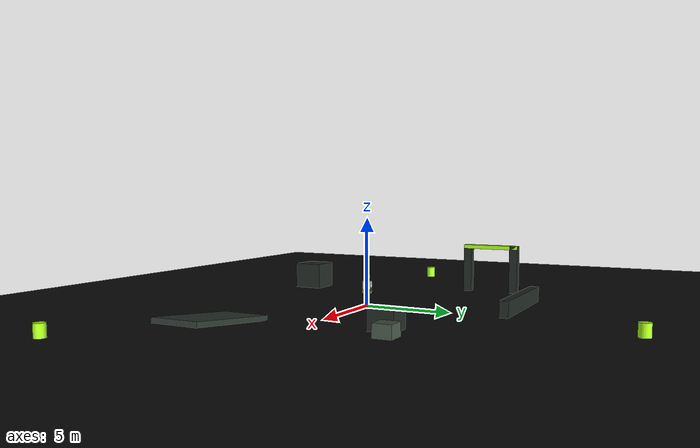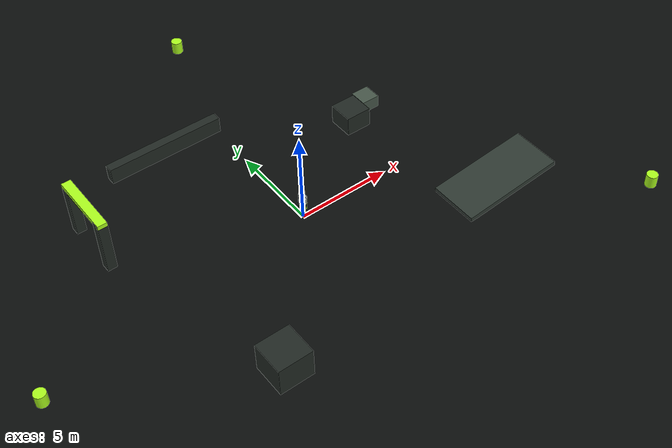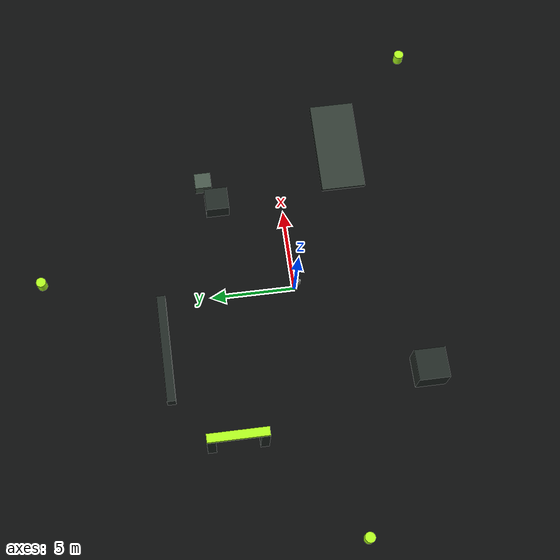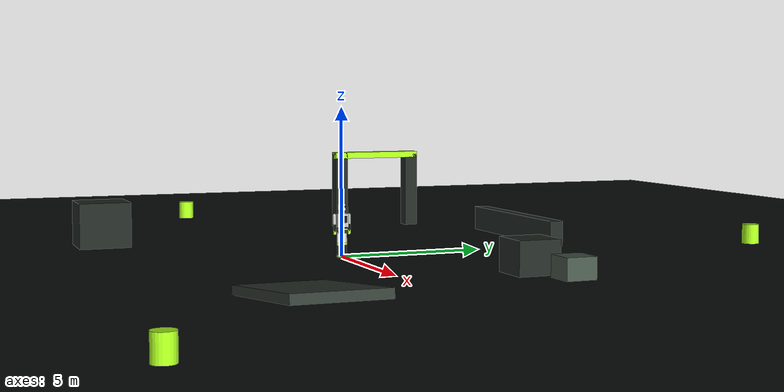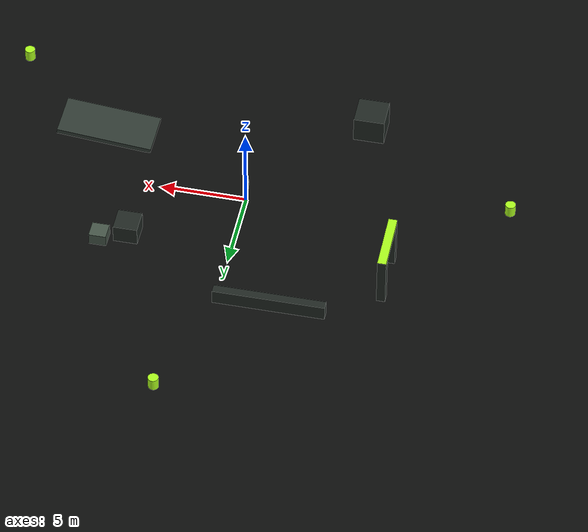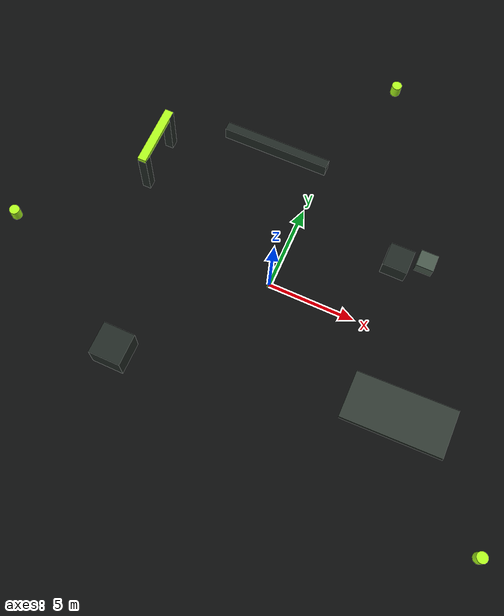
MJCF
<mujoco model="AION H1 open field trainer">
  <compiler angle="radian" autolimits="true"/>
  <option timestep="0.002" integrator="implicitfast" cone="elliptic" gravity="0 0 -9.81"/>
  <statistic center="0 0 1" extent="18"/>

  <default>
    <joint damping="1.5" armature="0.015" limited="true"/>
    <geom friction="1.0 0.005 0.0001" condim="4" contype="1" conaffinity="0" solref="0.012 1" solimp="0.92 0.98 0.002"/>
    <position kp="180" kv="18" ctrllimited="true" forcelimited="true"/>
    <default class="leg">
      <joint damping="2.2" armature="0.025"/>
      <geom rgba="0.76 0.79 0.75 1"/>
    </default>
    <default class="accent">
      <geom rgba="0.68 1 0.12 1"/>
    </default>
    <default class="dark">
      <geom rgba="0.075 0.09 0.085 1"/>
    </default>
    <default class="world">
      <geom contype="0" conaffinity="1" friction="1.05 0.005 0.0001" rgba="0.13 0.16 0.14 1"/>
    </default>
  </default>

  <worldbody>
    <geom name="field_floor" type="plane" size="60 60 0.1" rgba="0.045 0.05 0.047 1"
          contype="0" conaffinity="1" friction="1.05 0.005 0.0001"/>
    <light name="key" pos="2 -4 7" dir="0.2 0.3 -1" diffuse="1 1 1" castshadow="true"/>

    <geom name="crate_a" class="world" type="box" pos="6 4 0.55" size="0.7 0.7 0.55"/>
    <geom name="crate_b" class="world" type="box" pos="7.5 4.7 0.35" size="0.5 0.5 0.35" rgba="0.28 0.34 0.29 1"/>
    <geom name="crate_c" class="world" type="box" pos="-6 -7 0.8" size="0.9 0.9 0.8"/>
    <geom name="ramp" class="world" type="box" pos="9 -4 0.34" size="2.8 1.35 0.14" euler="0 -0.1 0" rgba="0.19 0.23 0.2 1"/>
    <geom name="low_wall" class="world" type="box" pos="-3 8 0.45" size="3.2 0.25 0.45"/>
    <geom name="gate_left" class="world" type="box" pos="-9 3 1.5" size="0.25 0.25 1.5"/>
    <geom name="gate_right" class="world" type="box" pos="-9 6 1.5" size="0.25 0.25 1.5"/>
    <geom name="gate_top" class="world" type="box" pos="-9 4.5 2.9" size="0.25 1.75 0.12" rgba="0.68 1 0.12 1"/>
    <geom name="beacon_north" class="world" type="cylinder" pos="2 15 0.35" size="0.3 0.35" rgba="0.68 1 0.12 1"/>
    <geom name="beacon_west" class="world" type="cylinder" pos="-15 -2 0.35" size="0.3 0.35" rgba="0.68 1 0.12 1"/>
    <geom name="beacon_east" class="world" type="cylinder" pos="15 -9 0.35" size="0.3 0.35" rgba="0.68 1 0.12 1"/>

    <body name="pelvis" pos="0 0 0.89">
      <joint name="root_x" type="slide" axis="1 0 0" limited="false" damping="0.1"/>
      <joint name="root_y" type="slide" axis="0 1 0" limited="false" damping="0.1"/>
      <joint name="root_z" type="slide" axis="0 0 1" range="-0.75 0.8" damping="0.1"/>
      <joint name="root_yaw" type="hinge" axis="0 0 1" limited="false" damping="0.4"/>
      <joint name="root_roll" type="hinge" axis="1 0 0" range="-1.2 1.2" damping="0.6"/>
      <joint name="root_pitch" type="hinge" axis="0 1 0" range="-1.45 1.45" damping="0.6"/>
      <geom name="pelvis_shell" type="box" size="0.13 0.16 0.095" mass="7.5" rgba="0.13 0.15 0.14 1"/>
      <geom name="pelvis_core" class="accent" type="box" size="0.07 0.168 0.028" pos="0.065 0 0.025" mass="0.5" contype="0" conaffinity="0"/>

      <body name="torso" pos="0 0 0.14">
        <geom name="torso_shell" type="box" size="0.145 0.195 0.23" pos="0 0 0.19" mass="13.5" rgba="0.70 0.73 0.70 1"/>
        <geom name="torso_panel" class="dark" type="box" size="0.151 0.13 0.11" pos="0.005 0 0.22" mass="0.5" contype="0" conaffinity="0"/>
        <geom name="torso_light" class="accent" type="box" size="0.156 0.055 0.012" pos="0.006 0 0.31" mass="0.05" contype="0" conaffinity="0"/>
        <site name="site_imu_torso" pos="0 0 0.34" size="0.018" rgba="0.68 1 0.12 1"/>

        <body name="head" pos="0 0 0.51">
          <geom name="neck" class="dark" type="cylinder" size="0.055 0.055" mass="0.5"/>
          <geom name="head_shell" type="box" size="0.115 0.105 0.105" pos="0 0 0.12" mass="2.6" rgba="0.76 0.79 0.75 1"/>
          <geom name="visor" class="dark" type="box" size="0.119 0.09 0.035" pos="0.008 0 0.14" mass="0.05" contype="0" conaffinity="0"/>
          <geom name="visor_signal" class="accent" type="box" size="0.121 0.045 0.008" pos="0.01 0 0.14" mass="0.02" contype="0" conaffinity="0"/>
        </body>

        <body name="left_upper_arm" pos="0 0.255 0.36">
          <joint name="left_shoulder_pitch" axis="0 1 0" range="-1.4 1.4"/>
          <geom name="left_upper_arm_geom" class="leg" type="capsule" fromto="0 0 0 0 0 -0.29" size="0.055" mass="1.7"/>
          <body name="left_forearm" pos="0 0 -0.29">
            <joint name="left_elbow_pitch" axis="0 1 0" range="0 2.2"/>
            <geom name="left_forearm_geom" class="dark" type="capsule" fromto="0 0 0 0 0 -0.25" size="0.048" mass="0.85"/>
            <geom name="left_hand" class="accent" type="box" size="0.045 0.04 0.07" pos="0 0 -0.28" mass="0.2"/>
          </body>
        </body>

        <body name="right_upper_arm" pos="0 -0.255 0.36">
          <joint name="right_shoulder_pitch" axis="0 1 0" range="-1.4 1.4"/>
          <geom name="right_upper_arm_geom" class="leg" type="capsule" fromto="0 0 0 0 0 -0.29" size="0.055" mass="1.7"/>
          <body name="right_forearm" pos="0 0 -0.29">
            <joint name="right_elbow_pitch" axis="0 1 0" range="0 2.2"/>
            <geom name="right_forearm_geom" class="dark" type="capsule" fromto="0 0 0 0 0 -0.25" size="0.048" mass="0.85"/>
            <geom name="right_hand" class="accent" type="box" size="0.045 0.04 0.07" pos="0 0 -0.28" mass="0.2"/>
          </body>
        </body>
      </body>

      <body name="left_thigh" pos="0 0.1 -0.09">
        <joint name="left_hip_roll" axis="1 0 0" range="-0.45 0.45"/>
        <joint name="left_hip_pitch" axis="0 1 0" range="-1.2 0.8"/>
        <geom name="left_thigh_geom" class="leg" type="capsule" fromto="0 0 0 0 0 -0.37" size="0.075" mass="4.8"/>
        <body name="left_shin" pos="0 0 -0.37">
          <joint name="left_knee_pitch" axis="0 1 0" range="0 2.1"/>
          <geom name="left_knee" class="accent" type="sphere" size="0.083" mass="0.4"/>
          <geom name="left_shin_geom" class="dark" type="capsule" fromto="0 0 -0.02 0 0 -0.36" size="0.062" mass="3.2"/>
          <body name="left_foot" pos="0 0 -0.36">
            <joint name="left_ankle_pitch" axis="0 1 0" range="-0.75 0.55"/>
            <joint name="left_ankle_roll" axis="1 0 0" range="-0.35 0.35"/>
            <geom name="left_foot_geom" type="box" size="0.145 0.068 0.038" pos="0.065 0 -0.045" mass="1.35" rgba="0.68 1 0.12 1" friction="1.2 0.006 0.0001"/>
            <site name="site_left_sole" type="box" size="0.13 0.06 0.018" pos="0.065 0 -0.079" rgba="0.68 1 0.12 0.14"/>
          </body>
        </body>
      </body>

      <body name="right_thigh" pos="0 -0.1 -0.09">
        <joint name="right_hip_roll" axis="1 0 0" range="-0.45 0.45"/>
        <joint name="right_hip_pitch" axis="0 1 0" range="-1.2 0.8"/>
        <geom name="right_thigh_geom" class="leg" type="capsule" fromto="0 0 0 0 0 -0.37" size="0.075" mass="4.8"/>
        <body name="right_shin" pos="0 0 -0.37">
          <joint name="right_knee_pitch" axis="0 1 0" range="0 2.1"/>
          <geom name="right_knee" class="accent" type="sphere" size="0.083" mass="0.4"/>
          <geom name="right_shin_geom" class="dark" type="capsule" fromto="0 0 -0.02 0 0 -0.36" size="0.062" mass="3.2"/>
          <body name="right_foot" pos="0 0 -0.36">
            <joint name="right_ankle_pitch" axis="0 1 0" range="-0.75 0.55"/>
            <joint name="right_ankle_roll" axis="1 0 0" range="-0.35 0.35"/>
            <geom name="right_foot_geom" type="box" size="0.145 0.068 0.038" pos="0.065 0 -0.045" mass="1.35" rgba="0.68 1 0.12 1" friction="1.2 0.006 0.0001"/>
            <site name="site_right_sole" type="box" size="0.13 0.06 0.018" pos="0.065 0 -0.079" rgba="0.68 1 0.12 0.14"/>
          </body>
        </body>
      </body>
    </body>
  </worldbody>

  <actuator>
    <position name="left_hip_roll" joint="left_hip_roll" kp="150" kv="15" ctrlrange="-0.45 0.45" forcerange="-90 90"/>
    <position name="left_hip_pitch" joint="left_hip_pitch" kp="230" kv="22" ctrlrange="-1.2 0.8" forcerange="-150 150"/>
    <position name="left_knee_pitch" joint="left_knee_pitch" kp="260" kv="24" ctrlrange="0 2.1" forcerange="-180 180"/>
    <position name="left_ankle_pitch" joint="left_ankle_pitch" kp="190" kv="19" ctrlrange="-0.75 0.55" forcerange="-110 110"/>
    <position name="left_ankle_roll" joint="left_ankle_roll" kp="140" kv="14" ctrlrange="-0.35 0.35" forcerange="-65 65"/>
    <position name="right_hip_roll" joint="right_hip_roll" kp="150" kv="15" ctrlrange="-0.45 0.45" forcerange="-90 90"/>
    <position name="right_hip_pitch" joint="right_hip_pitch" kp="230" kv="22" ctrlrange="-1.2 0.8" forcerange="-150 150"/>
    <position name="right_knee_pitch" joint="right_knee_pitch" kp="260" kv="24" ctrlrange="0 2.1" forcerange="-180 180"/>
    <position name="right_ankle_pitch" joint="right_ankle_pitch" kp="190" kv="19" ctrlrange="-0.75 0.55" forcerange="-110 110"/>
    <position name="right_ankle_roll" joint="right_ankle_roll" kp="140" kv="14" ctrlrange="-0.35 0.35" forcerange="-65 65"/>
    <position name="left_shoulder_pitch" joint="left_shoulder_pitch" kp="70" kv="8" ctrlrange="-1.4 1.4" forcerange="-35 35"/>
    <position name="left_elbow_pitch" joint="left_elbow_pitch" kp="55" kv="6" ctrlrange="0 2.2" forcerange="-25 25"/>
    <position name="right_shoulder_pitch" joint="right_shoulder_pitch" kp="70" kv="8" ctrlrange="-1.4 1.4" forcerange="-35 35"/>
    <position name="right_elbow_pitch" joint="right_elbow_pitch" kp="55" kv="6" ctrlrange="0 2.2" forcerange="-25 25"/>
    <position name="balance_pitch" joint="root_pitch" kp="1200" kv="140" ctrlrange="-0.08 0.08" forcerange="-1500 1500"/>
    <position name="balance_roll" joint="root_roll" kp="1200" kv="140" ctrlrange="-0.08 0.08" forcerange="-1500 1500"/>
    <velocity name="pace_x" joint="root_x" kv="600" ctrlrange="-3 3" forcerange="-1000 1000"/>
    <velocity name="pace_y" joint="root_y" kv="600" ctrlrange="-3 3" forcerange="-1000 1000"/>
    <velocity name="turn_drive" joint="root_yaw" kv="380" ctrlrange="-1.8 1.8" forcerange="-700 700"/>
    <position name="balance_height" joint="root_z" kp="1600" kv="170" ctrlrange="-0.1 0.15" forcerange="-500 1400"/>
  </actuator>

  <sensor>
    <gyro name="imu_gyro" site="site_imu_torso"/>
    <accelerometer name="imu_accel" site="site_imu_torso"/>
    <framequat name="imu_quat" objtype="site" objname="site_imu_torso"/>
    <touch name="touch_left_foot" site="site_left_sole"/>
    <touch name="touch_right_foot" site="site_right_sole"/>
  </sensor>
</mujoco>
